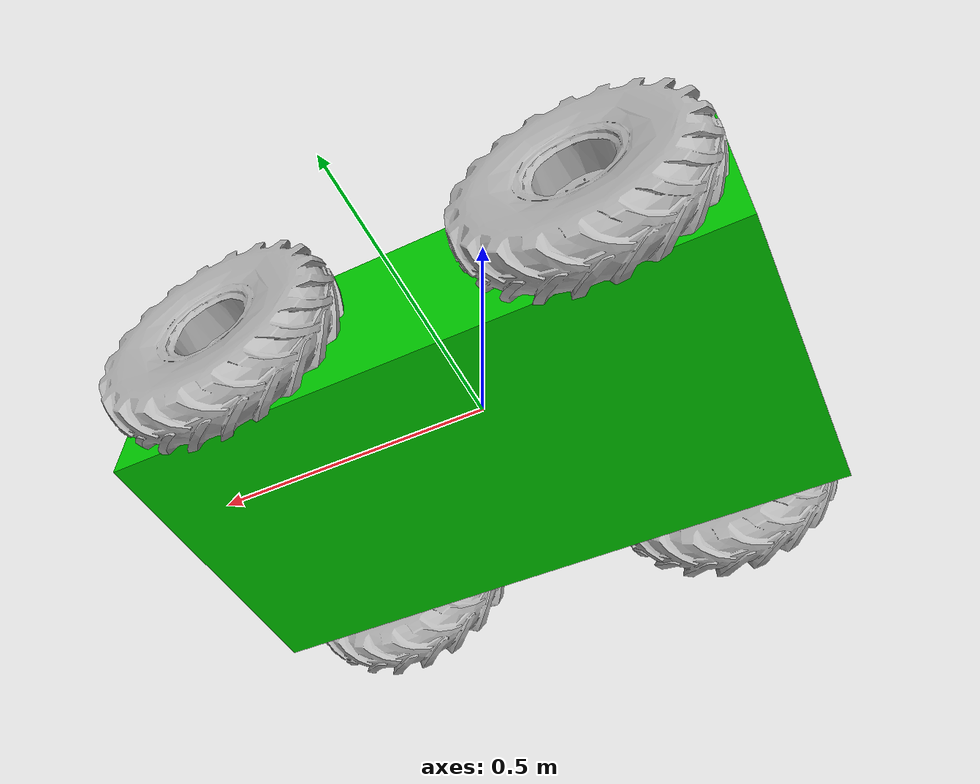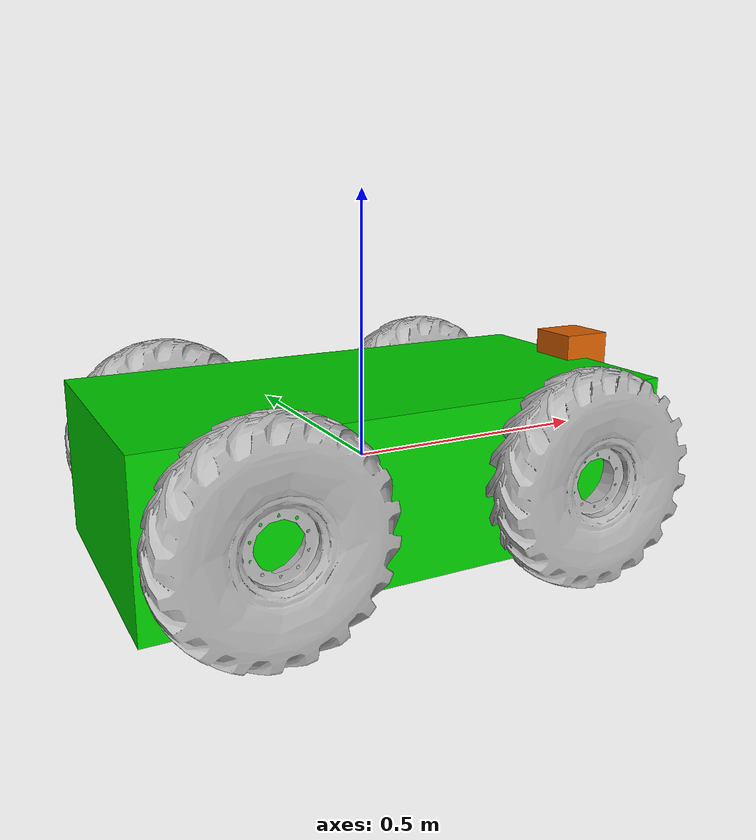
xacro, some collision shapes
<?xml version="1.0"?>
<robot name="robot2" xmlns:xacro="http://ros.org/wiki/xacro">

    <xacro:arg name="gazebo" default="false"/>
    <xacro:property name="gazebo" value="$(arg gazebo)"/>

    <xacro:include filename="$(find urdf_example1)/description/urdf/macros/materials.xacro"/>
    <xacro:include filename="$(find urdf_example1)/description/urdf/macros/base.xacro"/>
    <xacro:include filename="$(find urdf_example1)/description/urdf/macros/wheel.xacro"/>
    <xacro:include filename="$(find urdf_example1)/description/urdf/macros/laser_scanners.xacro"/>
    <xacro:include filename="$(find urdf_example1)/description/urdf/macros/gazebo_top_level_plugins.xacro"/>

    <!--base dimensions (length, width and height) and mass-->
    <xacro:property name="bl" value="1"/>
    <xacro:property name="bw" value="0.5"/>
    <xacro:property name="bh" value="0.3"/>
    <xacro:property name="bm" value="10"/>

    <!--wheel dimensions (radius and thickness) and mass-->
    <xacro:property name="wr" value="0.2"/>
    <xacro:property name="wt" value="0.1"/>
    <xacro:property name="wm" value="1"/>

    <!--create base-->
    <xacro:base/>

    <!--create wheels-->
    <xacro:wheel name="front_right" x="${bl/2-wr}" y="${-(bw+wt)/2}"/>
    <xacro:wheel name="back_right" x="${-bl/2+wr}" y="${-(bw+wt)/2}"/>
    <xacro:wheel name="back_left" x="${-bl/2+wr}" y="${(bw+wt)/2}"/>
    <xacro:wheel name="front_left" x="${bl/2-wr}" y="${(bw+wt)/2}"/>

    <!--Add laser scanners-->
    <xacro:hokuyo name="front_scan" xyz="${bl/2} 0 ${bh/2}" rpy="0 0 0"/>

    <!--Add top-level gazebo plugins, if requested-->
    <xacro:if value="${gazebo}">
        <xacro:joints_publisher/>
        <xacro:skid_steer/>
    </xacro:if>

</robot>

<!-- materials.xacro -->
<robot>

	<material name="black">
		<color rgba="0.0 0.0 0.0 1.0"/>
	</material>

	<material name="blue">
		<color rgba="0.0 0.0 0.8 1.0"/>
	</material>

	<material name="green">
		<color rgba="0.0 0.8 0.0 1.0"/>
	</material>

	<material name="gray">
		<color rgba="0.7 0.7 0.7 1.0"/>
	</material>

	<material name="darkgray">
		<color rgba="0.3 0.3 0.3 1.0"/>
	</material>

	<material name="red">
		<color rgba="0.8 0.0 0.0 1.0"/>
	</material>

	<material name="white">
		<color rgba="1.0 1.0 1.0 1.0"/>
	</material>

	<material name="yellow">
		<color rgba="0.8 0.8 0.0 1.0"/>
	</material>

</robot>

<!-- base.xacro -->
<robot xmlns:xacro="http://ros.org/wiki/xacro">

    <!--params are: base length, width, height and a gazebo flag-->
    <xacro:macro name="base" params="bl:=^ bw:=^ bh:=^ bm:=^ gazebo:=^">
        <link name="base_link">
            <visual>
                <geometry>
                    <box size="${bl} ${bw} ${bh}"/>
                </geometry>
                <material name="green"/>
            </visual>
            <collision>
                <geometry>
                    <box size="${bl} ${bw} ${bh}"/>
                </geometry>
            </collision>
            <inertial>
                <mass value="${bm}"/>
                <inertia ixx="${bm*(bw**2+bh**2)/12}" ixy="0.0" ixz="0.0" iyy="${bm*(bl**2+bh**2)/12}" iyz="0.0" izz="${bm*(bl**2+bw**2)/12}"/>
            </inertial>
        </link>

        <!--Add gazebo references, if requested-->
        <xacro:if value="${gazebo}">
            <gazebo reference="base_link">
                <material>Gazebo/Green</material>
            </gazebo>
        </xacro:if>

    </xacro:macro>

</robot>

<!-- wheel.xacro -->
<robot xmlns:xacro="http://ros.org/wiki/xacro">

    <!--wheel params are: (distinctive part of) link name, 3d position, radius, thickness, mass and a gazebo flag-->
    <xacro:macro name="wheel" params="name x:=0 y:=0 z:=0 wr:=^ wt:=^ wm:=^ gazebo:=^">
        <joint name="base_to_${name}_wheel" type="continuous">
            <parent link="base_link"/>
            <child link="${name}_wheel"/>
            <origin xyz="${x} ${y} ${z}"/>
            <axis xyz="0 1 0"/>
        </joint>

        <link name="${name}_wheel">
            <visual>
                <origin xyz="0 0 0" rpy="${pi/2} 0 0"/>
                <geometry>
                    <mesh filename="package://urdf_example1/description/meshes/monster_wheel.stl" scale="${2*wr} ${2*wr} ${wt}"/>
                </geometry>
                <material name="gray"/>
            </visual>
            <collision>
                <origin xyz="0 0 0" rpy="${pi/2} 0 0"/>
                <geometry>
                    <cylinder length="${wt}" radius="${wr}"/>
                </geometry>
            </collision>
            <inertial>
                <mass value="${wm}"/>
                <inertia ixx="${(wm*wr**2)/2}" ixy="0.0" ixz="0.0" iyy="${wm*(3*wr**2+wt**2)/12}" iyz="0.0" izz="${wm*(3*wr**2+wt**2)/12}"/>
            </inertial>
        </link>

        <!--Add gazebo references, if requested-->
        <xacro:if value="${gazebo}">
            <gazebo reference="${name}_wheel">
                <mu1>10.0</mu1>
                <mu2>10.0</mu2>
                <kp>1000000.0</kp>
                <kd>1.0</kd>
                <material>Gazebo/Grey</material>
            </gazebo>
        </xacro:if>

    </xacro:macro>

</robot>

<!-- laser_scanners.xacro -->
<robot xmlns:xacro="http://ros.org/wiki/xacro">

    <!--wheel params are: laser name, 3d position, orientation and a gazebo flag-->
    <xacro:macro name="hokuyo" params="name xyz rpy gazebo:=^">
        <joint name="base_to_${name}" type="fixed">
            <parent link="base_link"/>
            <child link="${name}"/>
            <origin xyz="${xyz}"/>
        </joint>

        <link name="${name}">
            <visual>
                <origin xyz="0 0 0" rpy="${rpy}"/>
                <geometry>
                    <mesh filename="package://urdf_example1/description/meshes/hokuyo.dae"/>
                </geometry>
            </visual>
            <collision>
                <origin xyz="0 0 0" rpy="${rpy}"/>
                <geometry>
                    <box size="0.1 0.1 0.1"/>
                </geometry>
            </collision>
            <inertial>
                <mass value="1e-5" />
                <inertia ixx="1e-6" ixy="0" ixz="0" iyy="1e-6" iyz="0" izz="1e-6" />
            </inertial>
        </link>

        <!--Add gazebo references, if requested-->
        <xacro:if value="${gazebo}">
            <gazebo reference="${name}">
                <sensor type="gpu_ray" name="${name}_sensor">
                    <pose>0 0 0 0 0 0</pose>
                    <visualize>true</visualize>
                    <update_rate>40</update_rate>
                    <ray>
                        <scan>
                            <horizontal>
                                <samples>720</samples>
                                <resolution>1</resolution>
                                <min_angle>-1.570796</min_angle>
                                <max_angle>1.570796</max_angle>
                            </horizontal>
                        </scan>
                        <range>
                            <min>0.10</min>
                            <max>4.0</max>
                            <resolution>0.01</resolution>
                        </range>
                        <noise>
                            <type>gaussian</type>
                            <mean>0.0</mean>
                            <stddev>0.01</stddev>
                        </noise>
                    </ray>
                    <plugin name="${name}_plugin" filename="libgazebo_ros_gpu_laser.so">
                        <topicName>${name}</topicName>
                        <frameName>${name}</frameName>
                    </plugin>
                </sensor>
            </gazebo>
        </xacro:if>

    </xacro:macro>

</robot>
